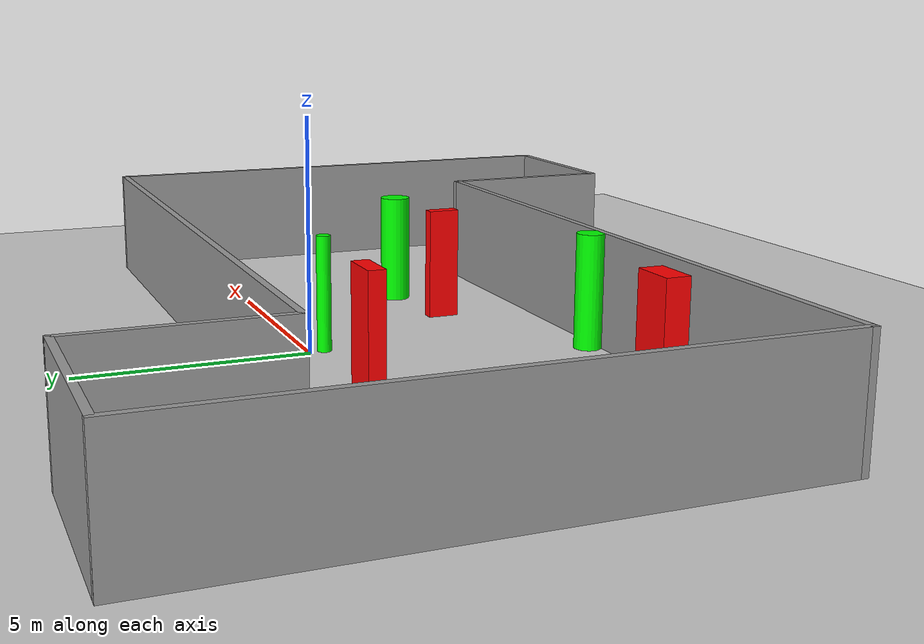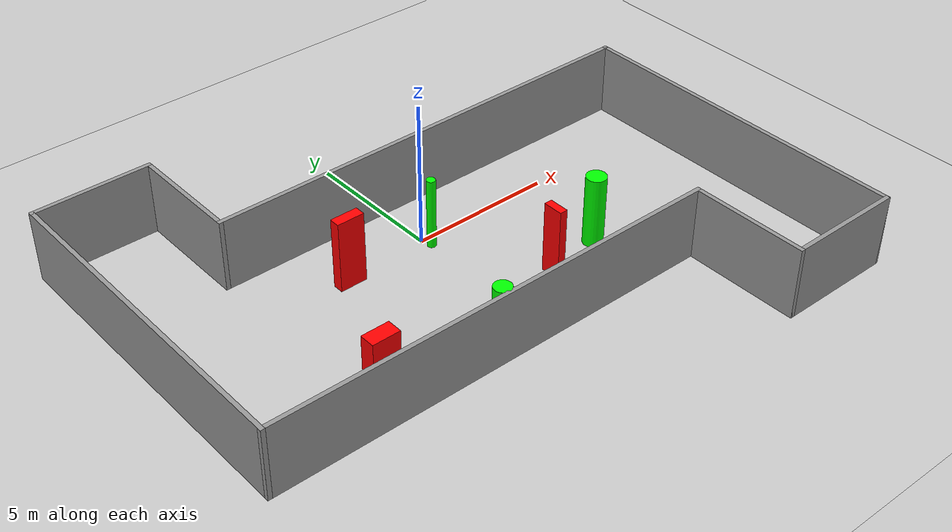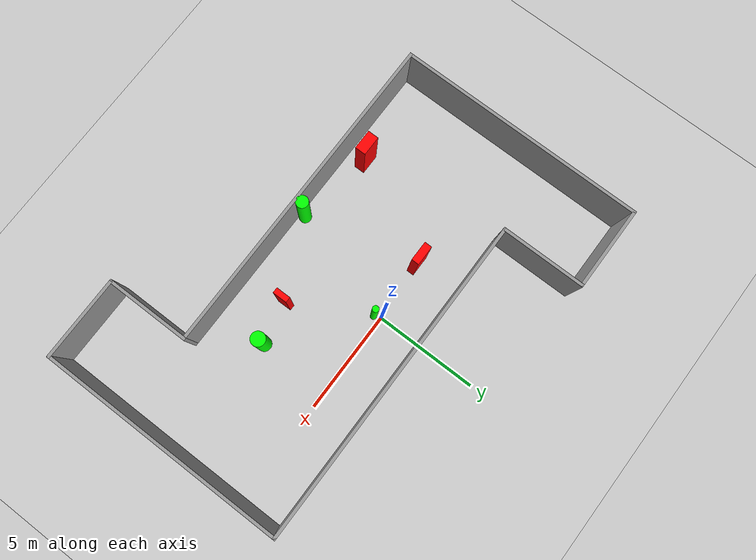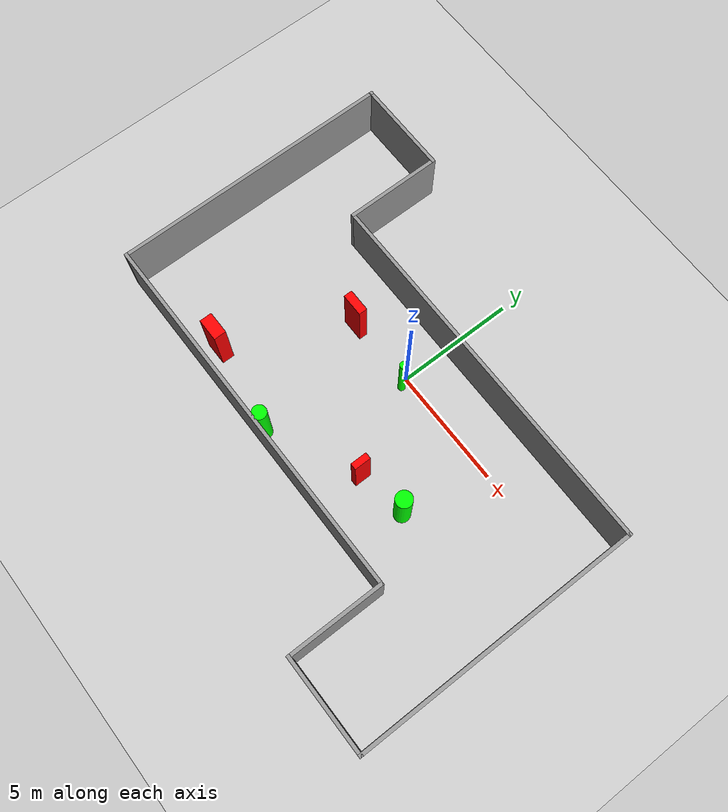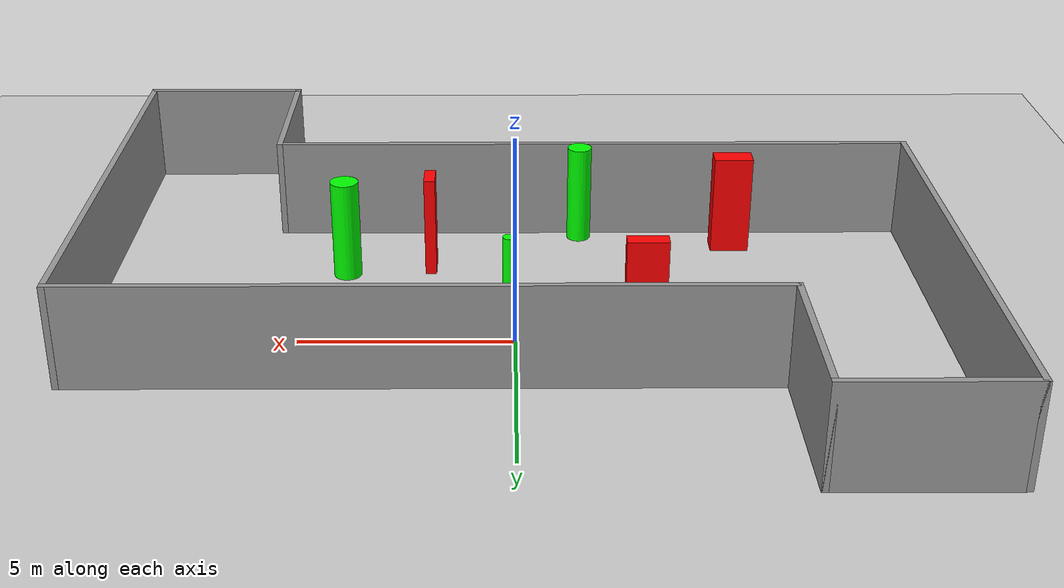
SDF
<sdf version="1.7">
 <world name="default">
  <light name="sun" type="directional">
   <pose>0 0 10 0 -0 0</pose>
   <diffuse>0.8 0.8 0.8 1</diffuse>
   <specular>0.2 0.2 0.2 1</specular>
   <attenuation>
    <range>1000</range>
    <constant>0.9</constant>
    <linear>0.01</linear>
    <quadratic>0.001</quadratic>
   </attenuation>
   <direction>-0.5 0.1 -0.9</direction>
   <spot><inner_angle>0</inner_angle><outer_angle>0</outer_angle><falloff>0</falloff></spot>
  </light>
  <model name="ground_plane">
   <static>1</static>
   <link name="link">
    <collision name="collision">
     <geometry><plane><normal>0 0 1</normal><size>100 100</size></plane></geometry>
     <surface>
      <contact><collide_bitmask>65535</collide_bitmask></contact>
      <friction><ode><mu>100</mu><mu2>50</mu2></ode></friction>
     </surface>
    </collision>
    <visual name="visual">
     <cast_shadows>0</cast_shadows>
     <geometry><plane><normal>0 0 1</normal><size>100 100</size></plane></geometry>
     <material>
      <script><uri>file://media/materials/scripts/gazebo.material</uri><name>Gazebo/Grey</name></script>
     </material>
    </visual>
   </link>
  </model>
  <gravity>0 0 -9.8</gravity>
  <magnetic_field>6e-06 2.3e-05 -4.2e-05</magnetic_field>
  <atmosphere type="adiabatic"/>
  <physics type="ode">
   <max_step_size>0.001</max_step_size>
   <real_time_factor>1</real_time_factor>
   <real_time_update_rate>1000</real_time_update_rate>
  </physics>
  <scene><ambient>0.4 0.4 0.4 1</ambient><background>0.7 0.7 0.7 1</background><shadows>1</shadows></scene>
  <spherical_coordinates>
   <surface_model>EARTH_WGS84</surface_model>
   <latitude_deg>0</latitude_deg>
   <longitude_deg>0</longitude_deg>
   <elevation>0</elevation>
   <heading_deg>0</heading_deg>
  </spherical_coordinates>
  <model name="my_base_walls">
   <link name="Wall_13">
    <collision name="Wall_13_Collision">
     <geometry><box><size>12.15 0.15 2.5</size></box></geometry>
     <pose>0 0 1.25 0 -0 0</pose>
    </collision>
    <visual name="Wall_13_Visual">
     <pose>0 0 1.25 0 -0 0</pose>
     <geometry><box><size>12.15 0.15 2.5</size></box></geometry>
     <material>
      <script><uri>file://media/materials/scripts/gazebo.material</uri><name>Gazebo/Grey</name></script>
      <ambient>1 1 1 1</ambient>
     </material>
     <meta><layer>0</layer></meta>
    </visual>
    <pose>10 -2 0 0 -0 1.5708</pose>
   </link>
   <link name="Wall_15">
    <collision name="Wall_15_Collision">
     <geometry><box><size>16.15 0.15 2.5</size></box></geometry>
     <pose>0 0 1.25 0 -0 0</pose>
    </collision>
    <visual name="Wall_15_Visual">
     <pose>0 0 1.25 0 -0 0</pose>
     <geometry><box><size>16.15 0.15 2.5</size></box></geometry>
     <material>
      <script><uri>file://media/materials/scripts/gazebo.material</uri><name>Gazebo/Grey</name></script>
      <ambient>1 1 1 1</ambient>
     </material>
     <meta><layer>0</layer></meta>
    </visual>
    <pose>2 4 0 0 -0 3.14159</pose>
   </link>
   <link name="Wall_17">
    <collision name="Wall_17_Collision">
     <geometry><box><size>4.15 0.15 2.5</size></box></geometry>
     <pose>0 0 1.25 0 -0 0</pose>
    </collision>
    <visual name="Wall_17_Visual">
     <pose>0 0 1.25 0 -0 0</pose>
     <geometry><box><size>4.15 0.15 2.5</size></box></geometry>
     <material>
      <script><uri>file://media/materials/scripts/gazebo.material</uri><name>Gazebo/Grey</name></script>
      <ambient>1 1 1 1</ambient>
     </material>
     <meta><layer>0</layer></meta>
    </visual>
    <pose>6 -6 0 0 -0 -1.5708</pose>
   </link>
   <link name="Wall_19">
    <collision name="Wall_19_Collision">
     <geometry><box><size>12.15 0.15 2.5</size></box></geometry>
     <pose>0 0 1.25 0 -0 0</pose>
    </collision>
    <visual name="Wall_19_Visual">
     <pose>0 0 1.25 0 -0 0</pose>
     <geometry><box><size>12.15 0.15 2.5</size></box></geometry>
     <material>
      <script><uri>file://media/materials/scripts/gazebo.material</uri><name>Gazebo/Grey</name></script>
      <ambient>1 1 1 1</ambient>
     </material>
     <meta><layer>0</layer></meta>
    </visual>
    <pose>-10 2 0 0 -0 1.5708</pose>
   </link>
   <link name="Wall_21">
    <collision name="Wall_21_Collision">
     <geometry><box><size>4.15 0.15 2.5</size></box></geometry>
     <pose>0 0 1.25 0 -0 0</pose>
    </collision>
    <visual name="Wall_21_Visual">
     <pose>0 0 1.25 0 -0 0</pose>
     <geometry><box><size>4.15 0.15 2.5</size></box></geometry>
     <material>
      <script><uri>file://media/materials/scripts/gazebo.material</uri><name>Gazebo/Grey</name></script>
      <ambient>1 1 1 1</ambient>
     </material>
     <meta><layer>0</layer></meta>
    </visual>
    <pose>-8 8 0 0 -0 0</pose>
   </link>
   <link name="Wall_23">
    <collision name="Wall_23_Collision">
     <geometry><box><size>4.15 0.15 2.5</size></box></geometry>
     <pose>0 0 1.25 0 -0 0</pose>
    </collision>
    <visual name="Wall_23_Visual">
     <pose>0 0 1.25 0 -0 0</pose>
     <geometry><box><size>4.15 0.15 2.5</size></box></geometry>
     <material>
      <script><uri>file://media/materials/scripts/gazebo.material</uri><name>Gazebo/Grey</name></script>
      <ambient>1 1 1 1</ambient>
     </material>
     <meta><layer>0</layer></meta>
    </visual>
    <pose>-6 6 0 0 -0 -1.5708</pose>
   </link>
   <link name="Wall_25">
    <collision name="Wall_25_Collision">
     <geometry><box><size>4.15 0.15 2.5</size></box></geometry>
     <pose>0 0 1.25 0 -0 0</pose>
    </collision>
    <visual name="Wall_25_Visual">
     <pose>0 0 1.25 0 -0 0</pose>
     <geometry><box><size>4.15 0.15 2.5</size></box></geometry>
     <material>
      <script><uri>file://media/materials/scripts/gazebo.material</uri><name>Gazebo/Grey</name></script>
      <ambient>1 1 1 1</ambient>
     </material>
     <meta><layer>0</layer></meta>
    </visual>
    <pose>8 -8 0 0 -0 0</pose>
   </link>
   <link name="Wall_9">
    <collision name="Wall_9_Collision">
     <geometry><box><size>16.15 0.15 2.5</size></box></geometry>
     <pose>0 0 1.25 0 -0 0</pose>
    </collision>
    <visual name="Wall_9_Visual">
     <pose>0 0 1.25 0 -0 0</pose>
     <geometry><box><size>16.15 0.15 2.5</size></box></geometry>
     <material>
      <script><uri>file://media/materials/scripts/gazebo.material</uri><name>Gazebo/Grey</name></script>
      <ambient>1 1 1 1</ambient>
     </material>
     <meta><layer>0</layer></meta>
    </visual>
    <pose>-2 -4 0 0 -0 3.14159</pose>
   </link>
   <static>1</static>
   <pose>-0 -2 0 0 -0 0</pose>
  </model>
  <model name="cylinder1">
   <static>1</static>
   <link name="link">
    <inertial>
     <mass>1</mass>
     <inertia><ixx>0.5</ixx><ixy>0</ixy><ixz>0</ixz><iyy>0.5</iyy><iyz>0</iyz><izz>1</izz></inertia>
    </inertial>
    <collision name="collision">
     <geometry><cylinder><radius>0.3439713003420059</radius><length>2.5</length></cylinder></geometry>
    </collision>
    <visual name="visual">
     <geometry><cylinder><radius>0.3439713003420059</radius><length>2.5</length></cylinder></geometry>
     <material>
      <ambient>0 1 0 1</ambient>
      <diffuse>0 1 0 1</diffuse>
      <specular>0.1 0.1 0.1 1</specular>
      <emissive>0 0 0 0</emissive>
     </material>
    </visual>
   </link>
   <pose>4.133223300692686 -3.510204494555774 1.25 0 0 0</pose>
  </model>
  <model name="cylinder2">
   <static>1</static>
   <link name="link">
    <inertial>
     <mass>1</mass>
     <inertia><ixx>0.5</ixx><ixy>0</ixy><ixz>0</ixz><iyy>0.5</iyy><iyz>0</iyz><izz>1</izz></inertia>
    </inertial>
    <collision name="collision">
     <geometry><cylinder><radius>0.3005748622859576</radius><length>2.5</length></cylinder></geometry>
    </collision>
    <visual name="visual">
     <geometry><cylinder><radius>0.3005748622859576</radius><length>2.5</length></cylinder></geometry>
     <material>
      <ambient>0 1 0 1</ambient>
      <diffuse>0 1 0 1</diffuse>
      <specular>0.1 0.1 0.1 1</specular>
      <emissive>0 0 0 0</emissive>
     </material>
    </visual>
   </link>
   <pose>-1.674784103374206 -5.6873563094878925 1.25 0 0 0</pose>
  </model>
  <model name="cylinder3">
   <static>1</static>
   <link name="link">
    <inertial>
     <mass>1</mass>
     <inertia><ixx>0.5</ixx><ixy>0</ixy><ixz>0</ixz><iyy>0.5</iyy><iyz>0</iyz><izz>1</izz></inertia>
    </inertial>
    <collision name="collision">
     <geometry><cylinder><radius>0.15405546045521581</radius><length>2.5</length></cylinder></geometry>
    </collision>
    <visual name="visual">
     <geometry><cylinder><radius>0.15405546045521581</radius><length>2.5</length></cylinder></geometry>
     <material>
      <ambient>0 1 0 1</ambient>
      <diffuse>0 1 0 1</diffuse>
      <specular>0.1 0.1 0.1 1</specular>
      <emissive>0 0 0 0</emissive>
     </material>
    </visual>
   </link>
   <pose>0.12868560059078682 -0.3525243147797088 1.25 0 0 0</pose>
  </model>
  <model name="box1">
   <static>1</static>
   <link name="link">
    <inertial>
     <mass>1</mass>
     <inertia><ixx>0.083</ixx><ixy>0</ixy><ixz>0</ixz><iyy>0.083</iyy><iyz>0</iyz><izz>0.083</izz></inertia>
    </inertial>
    <collision name="collision">
     <geometry><box><size>0.9591069278627806 0.5229854145000433 2.5</size></box></geometry>
    </collision>
    <visual name="visual">
     <geometry><box><size>0.9591069278627806 0.5229854145000433 2.5</size></box></geometry>
     <material>
      <ambient>1 0 0 1</ambient>
      <diffuse>1 0 0 1</diffuse>
      <specular>0.1 0.1 0.1 1</specular>
      <emissive>0 0 0 0</emissive>
     </material>
    </visual>
    <sensor name="my_contact" type="contact">
     <contact><collision>box_collision</collision><topic>__default_topic__</topic></contact>
    </sensor>
   </link>
   <pose>-5.506702837311706 -5.0746767299688855 1.25 0 0 0</pose>
  </model>
  <model name="box2">
   <static>1</static>
   <link name="link">
    <inertial>
     <mass>1</mass>
     <inertia><ixx>0.083</ixx><ixy>0</ixy><ixz>0</ixz><iyy>0.083</iyy><iyz>0</iyz><izz>0.083</izz></inertia>
    </inertial>
    <collision name="collision">
     <geometry><box><size>0.2718509570889258 0.6956711441415829 2.5</size></box></geometry>
    </collision>
    <visual name="visual">
     <geometry><box><size>0.2718509570889258 0.6956711441415829 2.5</size></box></geometry>
     <material>
      <ambient>1 0 0 1</ambient>
      <diffuse>1 0 0 1</diffuse>
      <specular>0.1 0.1 0.1 1</specular>
      <emissive>0 0 0 0</emissive>
     </material>
    </visual>
    <sensor name="my_contact" type="contact">
     <contact><collision>box_collision</collision><topic>__default_topic__</topic></contact>
    </sensor>
   </link>
   <pose>2.071001960751394 -3.875869907233078 1.25 0 0 0</pose>
  </model>
  <model name="box3">
   <static>1</static>
   <link name="link">
    <inertial>
     <mass>1</mass>
     <inertia><ixx>0.083</ixx><ixy>0</ixy><ixz>0</ixz><iyy>0.083</iyy><iyz>0</iyz><izz>0.083</izz></inertia>
    </inertial>
    <collision name="collision">
     <geometry><box><size>0.9610603866290359 0.36541400005015107 2.5</size></box></geometry>
    </collision>
    <visual name="visual">
     <geometry><box><size>0.9610603866290359 0.36541400005015107 2.5</size></box></geometry>
     <material>
      <ambient>1 0 0 1</ambient>
      <diffuse>1 0 0 1</diffuse>
      <specular>0.1 0.1 0.1 1</specular>
      <emissive>0 0 0 0</emissive>
     </material>
    </visual>
    <sensor name="my_contact" type="contact">
     <contact><collision>box_collision</collision><topic>__default_topic__</topic></contact>
    </sensor>
   </link>
   <pose>-2.982049804490795 -0.2239270232991064 1.25 0 0 0</pose>
  </model>
 </world>
</sdf>
